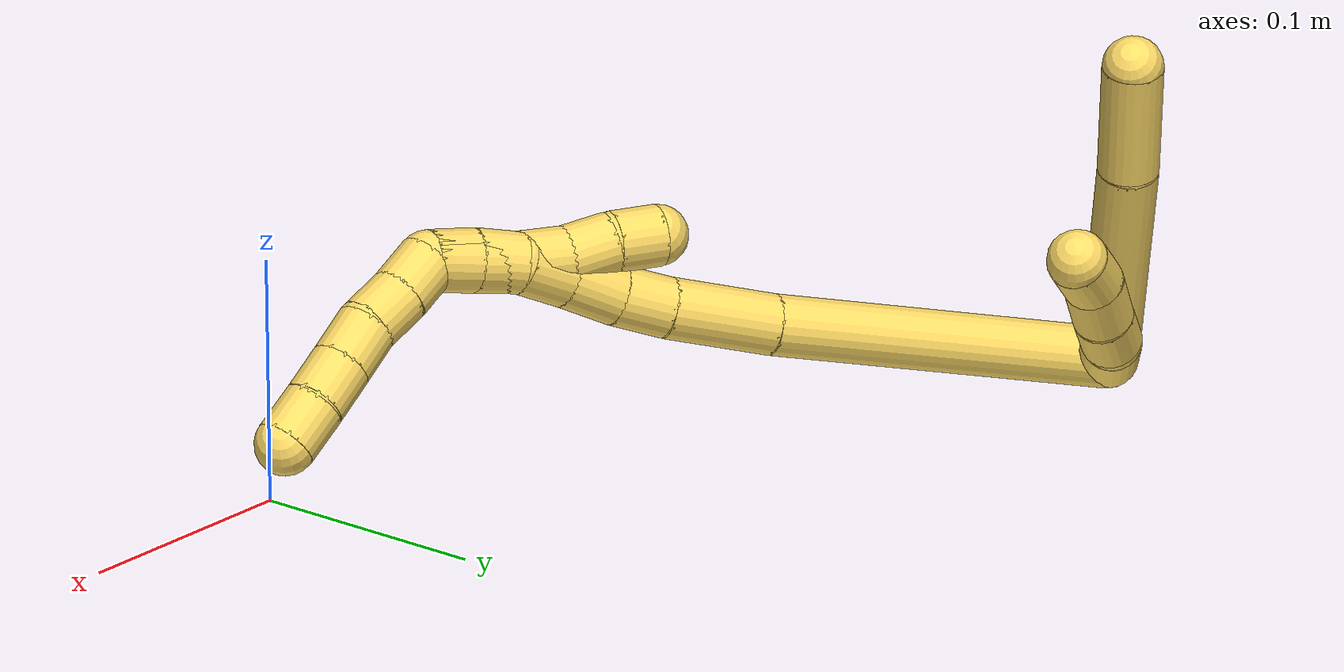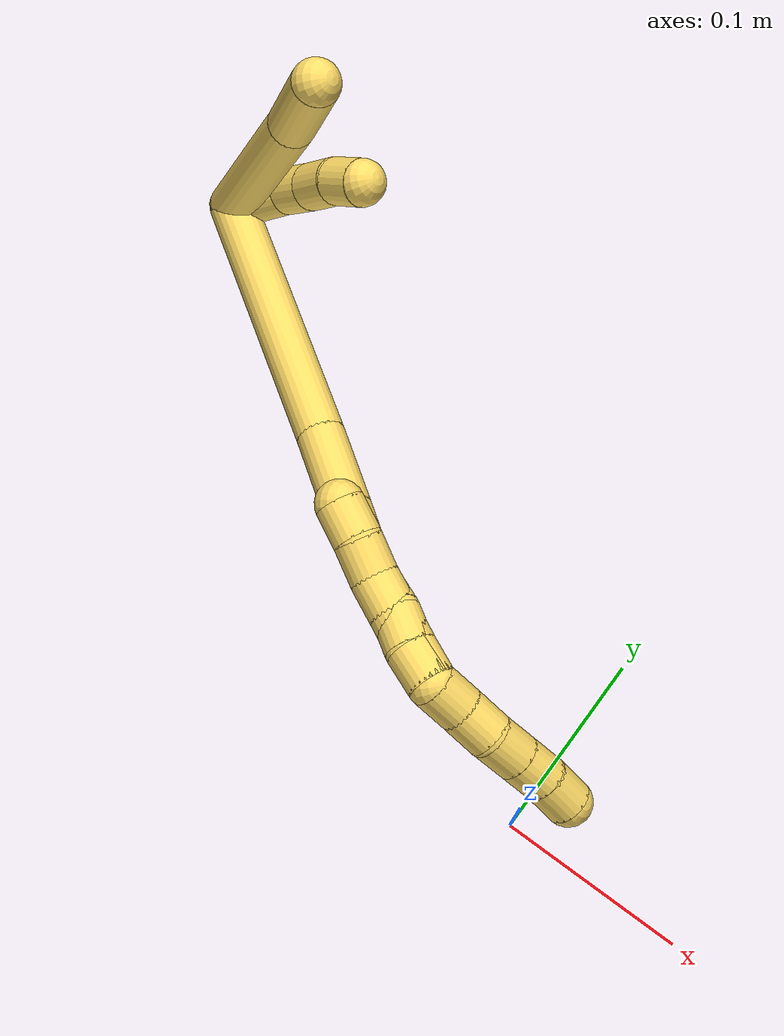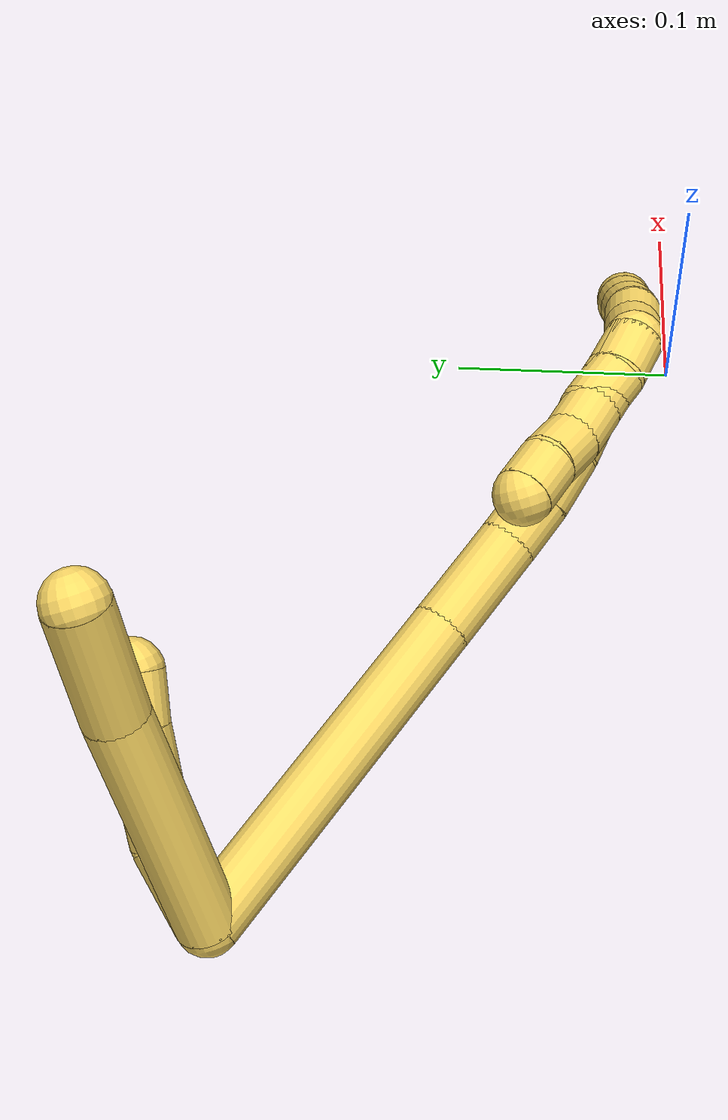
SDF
<sdf version="1.7">
 <world name="default">
  <model name="5">
   <static>0</static>
   <link name="5">
    <collision name="collision-cylinder-e_1_2_8">
     <pose>-0.017733 -0.011436 0.045639 0.245519 -0.36044 -0.044951</pose>
     <geometry><cylinder><radius>0.0125</radius><length>0.100562</length></cylinder></geometry>
     <surface>
      <friction><ode><mu>1.16</mu><mu2>1.16</mu2><slip1>0</slip1><slip2>0</slip2></ode></friction>
      <contact><ode><kp>1e+06</kp><kd>1</kd><max_vel>0</max_vel><min_depth>0.001</min_depth></ode></contact>
     </surface>
    </collision>
    <visual name="visual-cylinder-e_1_2_8">
     <pose>-0.017733 -0.011436 0.045639 0.245519 -0.36044 -0.044951</pose>
     <geometry><cylinder><radius>0.0125</radius><length>0.100562</length></cylinder></geometry>
     <material><ambient>1 0.858824 0.4 1</ambient></material>
    </visual>
    <collision name="collision-cylinder-e_2_8_6">
     <pose>-0.044404 -0.030727 0.112945 0.347796 -0.369922 -0.065713</pose>
     <geometry><cylinder><radius>0.0125</radius><length>0.049438</length></cylinder></geometry>
     <surface>
      <friction><ode><mu>1.16</mu><mu2>1.16</mu2><slip1>0</slip1><slip2>0</slip2></ode></friction>
      <contact><ode><kp>1e+06</kp><kd>1</kd><max_vel>0</max_vel><min_depth>0.001</min_depth></ode></contact>
     </surface>
    </collision>
    <visual name="visual-cylinder-e_2_8_6">
     <pose>-0.044404 -0.030727 0.112945 0.347796 -0.369922 -0.065713</pose>
     <geometry><cylinder><radius>0.0125</radius><length>0.049438</length></cylinder></geometry>
     <material><ambient>1 0.858824 0.4 1</ambient></material>
    </visual>
    <collision name="collision-cylinder-e_1_2_9">
     <pose>0.000744 0.004586 0.016445 -0.271958 0.043525 -0.005956</pose>
     <geometry><cylinder><radius>0.0125</radius><length>0.034177</length></cylinder></geometry>
     <surface>
      <friction><ode><mu>1.16</mu><mu2>1.16</mu2><slip1>0</slip1><slip2>0</slip2></ode></friction>
      <contact><ode><kp>1e+06</kp><kd>1</kd><max_vel>0</max_vel><min_depth>0.001</min_depth></ode></contact>
     </surface>
    </collision>
    <visual name="visual-cylinder-e_1_2_9">
     <pose>0.000744 0.004586 0.016445 -0.271958 0.043525 -0.005956</pose>
     <geometry><cylinder><radius>0.0125</radius><length>0.034177</length></cylinder></geometry>
     <material><ambient>1 0.858824 0.4 1</ambient></material>
    </visual>
    <collision name="collision-cylinder-e_2_9_10">
     <pose>0.001987 0.008365 0.043624 0.074973 0.046421 0.001741</pose>
     <geometry><cylinder><radius>0.0125</radius><length>0.021553</length></cylinder></geometry>
     <surface>
      <friction><ode><mu>1.16</mu><mu2>1.16</mu2><slip1>0</slip1><slip2>0</slip2></ode></friction>
      <contact><ode><kp>1e+06</kp><kd>1</kd><max_vel>0</max_vel><min_depth>0.001</min_depth></ode></contact>
     </surface>
    </collision>
    <visual name="visual-cylinder-e_2_9_10">
     <pose>0.001987 0.008365 0.043624 0.074973 0.046421 0.001741</pose>
     <geometry><cylinder><radius>0.0125</radius><length>0.021553</length></cylinder></geometry>
     <material><ambient>1 0.858824 0.4 1</ambient></material>
    </visual>
    <collision name="collision-cylinder-e_3_10_11">
     <pose>0.002264 0.005591 0.065992 0.1676 -0.018883 -0.001586</pose>
     <geometry><cylinder><radius>0.0125</radius><length>0.023601</length></cylinder></geometry>
     <surface>
      <friction><ode><mu>1.16</mu><mu2>1.16</mu2><slip1>0</slip1><slip2>0</slip2></ode></friction>
      <contact><ode><kp>1e+06</kp><kd>1</kd><max_vel>0</max_vel><min_depth>0.001</min_depth></ode></contact>
     </surface>
    </collision>
    <visual name="visual-cylinder-e_3_10_11">
     <pose>0.002264 0.005591 0.065992 0.1676 -0.018883 -0.001586</pose>
     <geometry><cylinder><radius>0.0125</radius><length>0.023601</length></cylinder></geometry>
     <material><ambient>1 0.858824 0.4 1</ambient></material>
    </visual>
    <collision name="collision-cylinder-e_4_11_5">
     <pose>0.003816 0.002196 0.087706 0.140593 0.17252 0.012178</pose>
     <geometry><cylinder><radius>0.0125</radius><length>0.020669</length></cylinder></geometry>
     <surface>
      <friction><ode><mu>1.16</mu><mu2>1.16</mu2><slip1>0</slip1><slip2>0</slip2></ode></friction>
      <contact><ode><kp>1e+06</kp><kd>1</kd><max_vel>0</max_vel><min_depth>0.001</min_depth></ode></contact>
     </surface>
    </collision>
    <visual name="visual-cylinder-e_4_11_5">
     <pose>0.003816 0.002196 0.087706 0.140593 0.17252 0.012178</pose>
     <geometry><cylinder><radius>0.0125</radius><length>0.020669</length></cylinder></geometry>
     <material><ambient>1 0.858824 0.4 1</ambient></material>
    </visual>
    <collision name="collision-cylinder-e_1_2_12">
     <pose>0.056296 -0.032355 0.034133 0.758662 0.874826 0.368594</pose>
     <geometry><cylinder><radius>0.0125</radius><length>0.146713</length></cylinder></geometry>
     <surface>
      <friction><ode><mu>1.16</mu><mu2>1.16</mu2><slip1>0</slip1><slip2>0</slip2></ode></friction>
      <contact><ode><kp>1e+06</kp><kd>1</kd><max_vel>0</max_vel><min_depth>0.001</min_depth></ode></contact>
     </surface>
    </collision>
    <visual name="visual-cylinder-e_1_2_12">
     <pose>0.056296 -0.032355 0.034133 0.758662 0.874826 0.368594</pose>
     <geometry><cylinder><radius>0.0125</radius><length>0.146713</length></cylinder></geometry>
     <material><ambient>1 0.858824 0.4 1</ambient></material>
    </visual>
    <collision name="collision-cylinder-e_2_12_13">
     <pose>0.129207 -0.075612 0.07929 0.77985 0.819977 0.353499</pose>
     <geometry><cylinder><radius>0.0125</radius><length>0.045449</length></cylinder></geometry>
     <surface>
      <friction><ode><mu>1.16</mu><mu2>1.16</mu2><slip1>0</slip1><slip2>0</slip2></ode></friction>
      <contact><ode><kp>1e+06</kp><kd>1</kd><max_vel>0</max_vel><min_depth>0.001</min_depth></ode></contact>
     </surface>
    </collision>
    <visual name="visual-cylinder-e_2_12_13">
     <pose>0.129207 -0.075612 0.07929 0.77985 0.819977 0.353499</pose>
     <geometry><cylinder><radius>0.0125</radius><length>0.045449</length></cylinder></geometry>
     <material><ambient>1 0.858824 0.4 1</ambient></material>
    </visual>
    <collision name="collision-cylinder-e_3_13_14">
     <pose>0.153309 -0.092322 0.096124 0.785168 0.739058 0.318054</pose>
     <geometry><cylinder><radius>0.0125</radius><length>0.022234</length></cylinder></geometry>
     <surface>
      <friction><ode><mu>1.16</mu><mu2>1.16</mu2><slip1>0</slip1><slip2>0</slip2></ode></friction>
      <contact><ode><kp>1e+06</kp><kd>1</kd><max_vel>0</max_vel><min_depth>0.001</min_depth></ode></contact>
     </surface>
    </collision>
    <visual name="visual-cylinder-e_3_13_14">
     <pose>0.153309 -0.092322 0.096124 0.785168 0.739058 0.318054</pose>
     <geometry><cylinder><radius>0.0125</radius><length>0.022234</length></cylinder></geometry>
     <material><ambient>1 0.858824 0.4 1</ambient></material>
    </visual>
    <collision name="collision-cylinder-e_4_14_15">
     <pose>0.167843 -0.104181 0.109283 0.68887 0.637216 0.235559</pose>
     <geometry><cylinder><radius>0.0125</radius><length>0.023683</length></cylinder></geometry>
     <surface>
      <friction><ode><mu>1.16</mu><mu2>1.16</mu2><slip1>0</slip1><slip2>0</slip2></ode></friction>
      <contact><ode><kp>1e+06</kp><kd>1</kd><max_vel>0</max_vel><min_depth>0.001</min_depth></ode></contact>
     </surface>
    </collision>
    <visual name="visual-cylinder-e_4_14_15">
     <pose>0.167843 -0.104181 0.109283 0.68887 0.637216 0.235559</pose>
     <geometry><cylinder><radius>0.0125</radius><length>0.023683</length></cylinder></geometry>
     <material><ambient>1 0.858824 0.4 1</ambient></material>
    </visual>
    <collision name="collision-cylinder-e_5_15_16">
     <pose>0.181411 -0.114608 0.123925 0.540465 0.654088 0.187386</pose>
     <geometry><cylinder><radius>0.0125</radius><length>0.02144</length></cylinder></geometry>
     <surface>
      <friction><ode><mu>1.16</mu><mu2>1.16</mu2><slip1>0</slip1><slip2>0</slip2></ode></friction>
      <contact><ode><kp>1e+06</kp><kd>1</kd><max_vel>0</max_vel><min_depth>0.001</min_depth></ode></contact>
     </surface>
    </collision>
    <visual name="visual-cylinder-e_5_15_16">
     <pose>0.181411 -0.114608 0.123925 0.540465 0.654088 0.187386</pose>
     <geometry><cylinder><radius>0.0125</radius><length>0.02144</length></cylinder></geometry>
     <material><ambient>1 0.858824 0.4 1</ambient></material>
    </visual>
    <collision name="collision-cylinder-e_6_16_17">
     <pose>0.195678 -0.123289 0.135882 0.745393 0.884526 0.366139</pose>
     <geometry><cylinder><radius>0.0125</radius><length>0.020024</length></cylinder></geometry>
     <surface>
      <friction><ode><mu>1.16</mu><mu2>1.16</mu2><slip1>0</slip1><slip2>0</slip2></ode></friction>
      <contact><ode><kp>1e+06</kp><kd>1</kd><max_vel>0</max_vel><min_depth>0.001</min_depth></ode></contact>
     </surface>
    </collision>
    <visual name="visual-cylinder-e_6_16_17">
     <pose>0.195678 -0.123289 0.135882 0.745393 0.884526 0.366139</pose>
     <geometry><cylinder><radius>0.0125</radius><length>0.020024</length></cylinder></geometry>
     <material><ambient>1 0.858824 0.4 1</ambient></material>
    </visual>
    <collision name="collision-cylinder-e_7_17_1">
     <pose>0.211698 -0.130091 0.146013 0.428598 0.942315 0.22084</pose>
     <geometry><cylinder><radius>0.0125</radius><length>0.020457</length></cylinder></geometry>
     <surface>
      <friction><ode><mu>1.16</mu><mu2>1.16</mu2><slip1>0</slip1><slip2>0</slip2></ode></friction>
      <contact><ode><kp>1e+06</kp><kd>1</kd><max_vel>0</max_vel><min_depth>0.001</min_depth></ode></contact>
     </surface>
    </collision>
    <visual name="visual-cylinder-e_7_17_1">
     <pose>0.211698 -0.130091 0.146013 0.428598 0.942315 0.22084</pose>
     <geometry><cylinder><radius>0.0125</radius><length>0.020457</length></cylinder></geometry>
     <material><ambient>1 0.858824 0.4 1</ambient></material>
    </visual>
    <collision name="collision-cylinder-e_1_1_18">
     <pose>0.229099 -0.128873 0.153182 -1.142 1.14981 -0.788794</pose>
     <geometry><cylinder><radius>0.0125</radius><length>0.02</length></cylinder></geometry>
     <surface>
      <friction><ode><mu>1.16</mu><mu2>1.16</mu2><slip1>0</slip1><slip2>0</slip2></ode></friction>
      <contact><ode><kp>1e+06</kp><kd>1</kd><max_vel>0</max_vel><min_depth>0.001</min_depth></ode></contact>
     </surface>
    </collision>
    <visual name="visual-cylinder-e_1_1_18">
     <pose>0.229099 -0.128873 0.153182 -1.142 1.14981 -0.788794</pose>
     <geometry><cylinder><radius>0.0125</radius><length>0.02</length></cylinder></geometry>
     <material><ambient>1 0.858824 0.4 1</ambient></material>
    </visual>
    <collision name="collision-cylinder-e_2_18_19">
     <pose>0.2474 -0.122154 0.157492 -0.8551 1.1616 -0.581178</pose>
     <geometry><cylinder><radius>0.0125</radius><length>0.02</length></cylinder></geometry>
     <surface>
      <friction><ode><mu>1.16</mu><mu2>1.16</mu2><slip1>0</slip1><slip2>0</slip2></ode></friction>
      <contact><ode><kp>1e+06</kp><kd>1</kd><max_vel>0</max_vel><min_depth>0.001</min_depth></ode></contact>
     </surface>
    </collision>
    <visual name="visual-cylinder-e_2_18_19">
     <pose>0.2474 -0.122154 0.157492 -0.8551 1.1616 -0.581178</pose>
     <geometry><cylinder><radius>0.0125</radius><length>0.02</length></cylinder></geometry>
     <material><ambient>1 0.858824 0.4 1</ambient></material>
    </visual>
    <collision name="collision-cylinder-e_3_19_20">
     <pose>0.265452 -0.114678 0.161192 -1.33194 1.09233 -0.891113</pose>
     <geometry><cylinder><radius>0.0125</radius><length>0.02</length></cylinder></geometry>
     <surface>
      <friction><ode><mu>1.16</mu><mu2>1.16</mu2><slip1>0</slip1><slip2>0</slip2></ode></friction>
      <contact><ode><kp>1e+06</kp><kd>1</kd><max_vel>0</max_vel><min_depth>0.001</min_depth></ode></contact>
     </surface>
    </collision>
    <visual name="visual-cylinder-e_3_19_20">
     <pose>0.265452 -0.114678 0.161192 -1.33194 1.09233 -0.891113</pose>
     <geometry><cylinder><radius>0.0125</radius><length>0.02</length></cylinder></geometry>
     <material><ambient>1 0.858824 0.4 1</ambient></material>
    </visual>
    <collision name="collision-cylinder-e_4_20_21">
     <pose>0.283226 -0.105803 0.163493 -1.30205 1.09674 -0.87112</pose>
     <geometry><cylinder><radius>0.0125</radius><length>0.02</length></cylinder></geometry>
     <surface>
      <friction><ode><mu>1.16</mu><mu2>1.16</mu2><slip1>0</slip1><slip2>0</slip2></ode></friction>
      <contact><ode><kp>1e+06</kp><kd>1</kd><max_vel>0</max_vel><min_depth>0.001</min_depth></ode></contact>
     </surface>
    </collision>
    <visual name="visual-cylinder-e_4_20_21">
     <pose>0.283226 -0.105803 0.163493 -1.30205 1.09674 -0.87112</pose>
     <geometry><cylinder><radius>0.0125</radius><length>0.02</length></cylinder></geometry>
     <material><ambient>1 0.858824 0.4 1</ambient></material>
    </visual>
    <collision name="collision-cylinder-e_5_21_4">
     <pose>0.301306 -0.097472 0.16519 -1.44804 1.16362 -1.05355</pose>
     <geometry><cylinder><radius>0.0125</radius><length>0.02</length></cylinder></geometry>
     <surface>
      <friction><ode><mu>1.16</mu><mu2>1.16</mu2><slip1>0</slip1><slip2>0</slip2></ode></friction>
      <contact><ode><kp>1e+06</kp><kd>1</kd><max_vel>0</max_vel><min_depth>0.001</min_depth></ode></contact>
     </surface>
    </collision>
    <visual name="visual-cylinder-e_5_21_4">
     <pose>0.301306 -0.097472 0.16519 -1.44804 1.16362 -1.05355</pose>
     <geometry><cylinder><radius>0.0125</radius><length>0.02</length></cylinder></geometry>
     <material><ambient>1 0.858824 0.4 1</ambient></material>
    </visual>
    <collision name="collision-cylinder-e_1_1_22">
     <pose>0.212092 -0.129528 0.146142 -2.62107 -0.90756 2.14204</pose>
     <geometry><cylinder><radius>0.0125</radius><length>0.02</length></cylinder></geometry>
     <surface>
      <friction><ode><mu>1.16</mu><mu2>1.16</mu2><slip1>0</slip1><slip2>0</slip2></ode></friction>
      <contact><ode><kp>1e+06</kp><kd>1</kd><max_vel>0</max_vel><min_depth>0.001</min_depth></ode></contact>
     </surface>
    </collision>
    <visual name="visual-cylinder-e_1_1_22">
     <pose>0.212092 -0.129528 0.146142 -2.62107 -0.90756 2.14204</pose>
     <geometry><cylinder><radius>0.0125</radius><length>0.02</length></cylinder></geometry>
     <material><ambient>1 0.858824 0.4 1</ambient></material>
    </visual>
    <collision name="collision-cylinder-e_2_22_23">
     <pose>0.19619 -0.12316 0.135829 -2.5547 -0.930963 2.05844</pose>
     <geometry><cylinder><radius>0.0125</radius><length>0.02</length></cylinder></geometry>
     <surface>
      <friction><ode><mu>1.16</mu><mu2>1.16</mu2><slip1>0</slip1><slip2>0</slip2></ode></friction>
      <contact><ode><kp>1e+06</kp><kd>1</kd><max_vel>0</max_vel><min_depth>0.001</min_depth></ode></contact>
     </surface>
    </collision>
    <visual name="visual-cylinder-e_2_22_23">
     <pose>0.19619 -0.12316 0.135829 -2.5547 -0.930963 2.05844</pose>
     <geometry><cylinder><radius>0.0125</radius><length>0.02</length></cylinder></geometry>
     <material><ambient>1 0.858824 0.4 1</ambient></material>
    </visual>
    <collision name="collision-cylinder-e_3_23_24">
     <pose>0.179519 -0.117381 0.126489 -2.62659 -1.04502 2.28381</pose>
     <geometry><cylinder><radius>0.0125</radius><length>0.02</length></cylinder></geometry>
     <surface>
      <friction><ode><mu>1.16</mu><mu2>1.16</mu2><slip1>0</slip1><slip2>0</slip2></ode></friction>
      <contact><ode><kp>1e+06</kp><kd>1</kd><max_vel>0</max_vel><min_depth>0.001</min_depth></ode></contact>
     </surface>
    </collision>
    <visual name="visual-cylinder-e_3_23_24">
     <pose>0.179519 -0.117381 0.126489 -2.62659 -1.04502 2.28381</pose>
     <geometry><cylinder><radius>0.0125</radius><length>0.02</length></cylinder></geometry>
     <material><ambient>1 0.858824 0.4 1</ambient></material>
    </visual>
    <collision name="collision-cylinder-e_4_24_25">
     <pose>0.161327 -0.113058 0.119775 -2.47353 -1.26727 2.25903</pose>
     <geometry><cylinder><radius>0.0125</radius><length>0.02</length></cylinder></geometry>
     <surface>
      <friction><ode><mu>1.16</mu><mu2>1.16</mu2><slip1>0</slip1><slip2>0</slip2></ode></friction>
      <contact><ode><kp>1e+06</kp><kd>1</kd><max_vel>0</max_vel><min_depth>0.001</min_depth></ode></contact>
     </surface>
    </collision>
    <visual name="visual-cylinder-e_4_24_25">
     <pose>0.161327 -0.113058 0.119775 -2.47353 -1.26727 2.25903</pose>
     <geometry><cylinder><radius>0.0125</radius><length>0.02</length></cylinder></geometry>
     <material><ambient>1 0.858824 0.4 1</ambient></material>
    </visual>
    <collision name="collision-cylinder-e_5_25_3">
     <pose>0.142919 -0.108703 0.113536 -2.5701 -1.08964 2.23878</pose>
     <geometry><cylinder><radius>0.0125</radius><length>0.02</length></cylinder></geometry>
     <surface>
      <friction><ode><mu>1.16</mu><mu2>1.16</mu2><slip1>0</slip1><slip2>0</slip2></ode></friction>
      <contact><ode><kp>1e+06</kp><kd>1</kd><max_vel>0</max_vel><min_depth>0.001</min_depth></ode></contact>
     </surface>
    </collision>
    <visual name="visual-cylinder-e_5_25_3">
     <pose>0.142919 -0.108703 0.113536 -2.5701 -1.08964 2.23878</pose>
     <geometry><cylinder><radius>0.0125</radius><length>0.02</length></cylinder></geometry>
     <material><ambient>1 0.858824 0.4 1</ambient></material>
    </visual>
    <collision name="collision-sphere-3">
     <pose>0.134055 -0.1062 0.109644 0 -0 0</pose>
     <geometry><sphere><radius>0.0125</radius></sphere></geometry>
     <surface>
      <friction><ode><mu>1.16</mu><mu2>1.16</mu2><slip1>0</slip1><slip2>0</slip2></ode></friction>
      <contact><ode><kp>1e+06</kp><kd>1</kd><max_vel>0</max_vel><min_depth>0.001</min_depth></ode></contact>
     </surface>
    </collision>
    <visual name="visual-sphere-3">
     <pose>0.134055 -0.1062 0.109644 0 -0 0</pose>
     <geometry><sphere><radius>0.0125</radius></sphere></geometry>
     <material><ambient>1 0.858824 0.4 1</ambient></material>
    </visual>
    <collision name="collision-sphere-25">
     <pose>0.151784 -0.111206 0.117429 0 -0 0</pose>
     <geometry><sphere><radius>0.0125</radius></sphere></geometry>
     <surface>
      <friction><ode><mu>1.16</mu><mu2>1.16</mu2><slip1>0</slip1><slip2>0</slip2></ode></friction>
      <contact><ode><kp>1e+06</kp><kd>1</kd><max_vel>0</max_vel><min_depth>0.001</min_depth></ode></contact>
     </surface>
    </collision>
    <visual name="visual-sphere-25">
     <pose>0.151784 -0.111206 0.117429 0 -0 0</pose>
     <geometry><sphere><radius>0.0125</radius></sphere></geometry>
     <material><ambient>1 0.858824 0.4 1</ambient></material>
    </visual>
    <collision name="collision-sphere-24">
     <pose>0.17087 -0.114909 0.122122 0 -0 0</pose>
     <geometry><sphere><radius>0.0125</radius></sphere></geometry>
     <surface>
      <friction><ode><mu>1.16</mu><mu2>1.16</mu2><slip1>0</slip1><slip2>0</slip2></ode></friction>
      <contact><ode><kp>1e+06</kp><kd>1</kd><max_vel>0</max_vel><min_depth>0.001</min_depth></ode></contact>
     </surface>
    </collision>
    <visual name="visual-sphere-24">
     <pose>0.17087 -0.114909 0.122122 0 -0 0</pose>
     <geometry><sphere><radius>0.0125</radius></sphere></geometry>
     <material><ambient>1 0.858824 0.4 1</ambient></material>
    </visual>
    <collision name="collision-sphere-23">
     <pose>0.188168 -0.119853 0.130857 0 -0 0</pose>
     <geometry><sphere><radius>0.0125</radius></sphere></geometry>
     <surface>
      <friction><ode><mu>1.16</mu><mu2>1.16</mu2><slip1>0</slip1><slip2>0</slip2></ode></friction>
      <contact><ode><kp>1e+06</kp><kd>1</kd><max_vel>0</max_vel><min_depth>0.001</min_depth></ode></contact>
     </surface>
    </collision>
    <visual name="visual-sphere-23">
     <pose>0.188168 -0.119853 0.130857 0 -0 0</pose>
     <geometry><sphere><radius>0.0125</radius></sphere></geometry>
     <material><ambient>1 0.858824 0.4 1</ambient></material>
    </visual>
    <collision name="collision-sphere-22">
     <pose>0.204212 -0.126466 0.1408 0 -0 0</pose>
     <geometry><sphere><radius>0.0125</radius></sphere></geometry>
     <surface>
      <friction><ode><mu>1.16</mu><mu2>1.16</mu2><slip1>0</slip1><slip2>0</slip2></ode></friction>
      <contact><ode><kp>1e+06</kp><kd>1</kd><max_vel>0</max_vel><min_depth>0.001</min_depth></ode></contact>
     </surface>
    </collision>
    <visual name="visual-sphere-22">
     <pose>0.204212 -0.126466 0.1408 0 -0 0</pose>
     <geometry><sphere><radius>0.0125</radius></sphere></geometry>
     <material><ambient>1 0.858824 0.4 1</ambient></material>
    </visual>
    <collision name="collision-sphere-4">
     <pose>0.310488 -0.093542 0.165675 0 -0 0</pose>
     <geometry><sphere><radius>0.0125</radius></sphere></geometry>
     <surface>
      <friction><ode><mu>1.16</mu><mu2>1.16</mu2><slip1>0</slip1><slip2>0</slip2></ode></friction>
      <contact><ode><kp>1e+06</kp><kd>1</kd><max_vel>0</max_vel><min_depth>0.001</min_depth></ode></contact>
     </surface>
    </collision>
    <visual name="visual-sphere-4">
     <pose>0.310488 -0.093542 0.165675 0 -0 0</pose>
     <geometry><sphere><radius>0.0125</radius></sphere></geometry>
     <material><ambient>1 0.858824 0.4 1</ambient></material>
    </visual>
    <collision name="collision-sphere-21">
     <pose>0.292123 -0.101402 0.164705 0 -0 0</pose>
     <geometry><sphere><radius>0.0125</radius></sphere></geometry>
     <surface>
      <friction><ode><mu>1.16</mu><mu2>1.16</mu2><slip1>0</slip1><slip2>0</slip2></ode></friction>
      <contact><ode><kp>1e+06</kp><kd>1</kd><max_vel>0</max_vel><min_depth>0.001</min_depth></ode></contact>
     </surface>
    </collision>
    <visual name="visual-sphere-21">
     <pose>0.292123 -0.101402 0.164705 0 -0 0</pose>
     <geometry><sphere><radius>0.0125</radius></sphere></geometry>
     <material><ambient>1 0.858824 0.4 1</ambient></material>
    </visual>
    <collision name="collision-sphere-20">
     <pose>0.274329 -0.110205 0.162281 0 -0 0</pose>
     <geometry><sphere><radius>0.0125</radius></sphere></geometry>
     <surface>
      <friction><ode><mu>1.16</mu><mu2>1.16</mu2><slip1>0</slip1><slip2>0</slip2></ode></friction>
      <contact><ode><kp>1e+06</kp><kd>1</kd><max_vel>0</max_vel><min_depth>0.001</min_depth></ode></contact>
     </surface>
    </collision>
    <visual name="visual-sphere-20">
     <pose>0.274329 -0.110205 0.162281 0 -0 0</pose>
     <geometry><sphere><radius>0.0125</radius></sphere></geometry>
     <material><ambient>1 0.858824 0.4 1</ambient></material>
    </visual>
    <collision name="collision-sphere-11">
     <pose>0.002042 0.003623 0.077625 0 -0 0</pose>
     <geometry><sphere><radius>0.0125</radius></sphere></geometry>
     <surface>
      <friction><ode><mu>1.16</mu><mu2>1.16</mu2><slip1>0</slip1><slip2>0</slip2></ode></friction>
      <contact><ode><kp>1e+06</kp><kd>1</kd><max_vel>0</max_vel><min_depth>0.001</min_depth></ode></contact>
     </surface>
    </collision>
    <visual name="visual-sphere-11">
     <pose>0.002042 0.003623 0.077625 0 -0 0</pose>
     <geometry><sphere><radius>0.0125</radius></sphere></geometry>
     <material><ambient>1 0.858824 0.4 1</ambient></material>
    </visual>
    <collision name="collision-sphere-10">
     <pose>0.002487 0.007559 0.054359 0 -0 0</pose>
     <geometry><sphere><radius>0.0125</radius></sphere></geometry>
     <surface>
      <friction><ode><mu>1.16</mu><mu2>1.16</mu2><slip1>0</slip1><slip2>0</slip2></ode></friction>
      <contact><ode><kp>1e+06</kp><kd>1</kd><max_vel>0</max_vel><min_depth>0.001</min_depth></ode></contact>
     </surface>
    </collision>
    <visual name="visual-sphere-10">
     <pose>0.002487 0.007559 0.054359 0 -0 0</pose>
     <geometry><sphere><radius>0.0125</radius></sphere></geometry>
     <material><ambient>1 0.858824 0.4 1</ambient></material>
    </visual>
    <collision name="collision-sphere-6">
     <pose>-0.053341 -0.038582 0.134612 0 -0 0</pose>
     <geometry><sphere><radius>0.0125</radius></sphere></geometry>
     <surface>
      <friction><ode><mu>1.16</mu><mu2>1.16</mu2><slip1>0</slip1><slip2>0</slip2></ode></friction>
      <contact><ode><kp>1e+06</kp><kd>1</kd><max_vel>0</max_vel><min_depth>0.001</min_depth></ode></contact>
     </surface>
    </collision>
    <visual name="visual-sphere-6">
     <pose>-0.053341 -0.038582 0.134612 0 -0 0</pose>
     <geometry><sphere><radius>0.0125</radius></sphere></geometry>
     <material><ambient>1 0.858824 0.4 1</ambient></material>
    </visual>
    <collision name="collision-sphere-9">
     <pose>0.001487 0.009172 0.032889 0 -0 0</pose>
     <geometry><sphere><radius>0.0125</radius></sphere></geometry>
     <surface>
      <friction><ode><mu>1.16</mu><mu2>1.16</mu2><slip1>0</slip1><slip2>0</slip2></ode></friction>
      <contact><ode><kp>1e+06</kp><kd>1</kd><max_vel>0</max_vel><min_depth>0.001</min_depth></ode></contact>
     </surface>
    </collision>
    <visual name="visual-sphere-9">
     <pose>0.001487 0.009172 0.032889 0 -0 0</pose>
     <geometry><sphere><radius>0.0125</radius></sphere></geometry>
     <material><ambient>1 0.858824 0.4 1</ambient></material>
    </visual>
    <collision name="collision-sphere-2">
     <geometry><sphere><radius>0.0125</radius></sphere></geometry>
     <surface>
      <friction><ode><mu>1.16</mu><mu2>1.16</mu2><slip1>0</slip1><slip2>0</slip2></ode></friction>
      <contact><ode><kp>1e+06</kp><kd>1</kd><max_vel>0</max_vel><min_depth>0.001</min_depth></ode></contact>
     </surface>
    </collision>
    <visual name="visual-sphere-2">
     <geometry><sphere><radius>0.0125</radius></sphere></geometry>
     <material><ambient>1 0.858824 0.4 1</ambient></material>
    </visual>
    <collision name="collision-sphere-19">
     <pose>0.256575 -0.119152 0.160102 0 -0 0</pose>
     <geometry><sphere><radius>0.0125</radius></sphere></geometry>
     <surface>
      <friction><ode><mu>1.16</mu><mu2>1.16</mu2><slip1>0</slip1><slip2>0</slip2></ode></friction>
      <contact><ode><kp>1e+06</kp><kd>1</kd><max_vel>0</max_vel><min_depth>0.001</min_depth></ode></contact>
     </surface>
    </collision>
    <visual name="visual-sphere-19">
     <pose>0.256575 -0.119152 0.160102 0 -0 0</pose>
     <geometry><sphere><radius>0.0125</radius></sphere></geometry>
     <material><ambient>1 0.858824 0.4 1</ambient></material>
    </visual>
    <collision name="collision-sphere-8">
     <pose>-0.035467 -0.022872 0.091278 0 -0 0</pose>
     <geometry><sphere><radius>0.0125</radius></sphere></geometry>
     <surface>
      <friction><ode><mu>1.16</mu><mu2>1.16</mu2><slip1>0</slip1><slip2>0</slip2></ode></friction>
      <contact><ode><kp>1e+06</kp><kd>1</kd><max_vel>0</max_vel><min_depth>0.001</min_depth></ode></contact>
     </surface>
    </collision>
    <visual name="visual-sphere-8">
     <pose>-0.035467 -0.022872 0.091278 0 -0 0</pose>
     <geometry><sphere><radius>0.0125</radius></sphere></geometry>
     <material><ambient>1 0.858824 0.4 1</ambient></material>
    </visual>
    <collision name="collision-sphere-5">
     <pose>0.00559 0.000769 0.097786 0 -0 0</pose>
     <geometry><sphere><radius>0.0125</radius></sphere></geometry>
     <surface>
      <friction><ode><mu>1.16</mu><mu2>1.16</mu2><slip1>0</slip1><slip2>0</slip2></ode></friction>
      <contact><ode><kp>1e+06</kp><kd>1</kd><max_vel>0</max_vel><min_depth>0.001</min_depth></ode></contact>
     </surface>
    </collision>
    <visual name="visual-sphere-5">
     <pose>0.00559 0.000769 0.097786 0 -0 0</pose>
     <geometry><sphere><radius>0.0125</radius></sphere></geometry>
     <material><ambient>1 0.858824 0.4 1</ambient></material>
    </visual>
    <collision name="collision-sphere-12">
     <pose>0.112592 -0.06471 0.068266 0 -0 0</pose>
     <geometry><sphere><radius>0.0125</radius></sphere></geometry>
     <surface>
      <friction><ode><mu>1.16</mu><mu2>1.16</mu2><slip1>0</slip1><slip2>0</slip2></ode></friction>
      <contact><ode><kp>1e+06</kp><kd>1</kd><max_vel>0</max_vel><min_depth>0.001</min_depth></ode></contact>
     </surface>
    </collision>
    <visual name="visual-sphere-12">
     <pose>0.112592 -0.06471 0.068266 0 -0 0</pose>
     <geometry><sphere><radius>0.0125</radius></sphere></geometry>
     <material><ambient>1 0.858824 0.4 1</ambient></material>
    </visual>
    <collision name="collision-sphere-13">
     <pose>0.145821 -0.086513 0.090313 0 -0 0</pose>
     <geometry><sphere><radius>0.0125</radius></sphere></geometry>
     <surface>
      <friction><ode><mu>1.16</mu><mu2>1.16</mu2><slip1>0</slip1><slip2>0</slip2></ode></friction>
      <contact><ode><kp>1e+06</kp><kd>1</kd><max_vel>0</max_vel><min_depth>0.001</min_depth></ode></contact>
     </surface>
    </collision>
    <visual name="visual-sphere-13">
     <pose>0.145821 -0.086513 0.090313 0 -0 0</pose>
     <geometry><sphere><radius>0.0125</radius></sphere></geometry>
     <material><ambient>1 0.858824 0.4 1</ambient></material>
    </visual>
    <collision name="collision-sphere-14">
     <pose>0.160798 -0.098131 0.101935 0 -0 0</pose>
     <geometry><sphere><radius>0.0125</radius></sphere></geometry>
     <surface>
      <friction><ode><mu>1.16</mu><mu2>1.16</mu2><slip1>0</slip1><slip2>0</slip2></ode></friction>
      <contact><ode><kp>1e+06</kp><kd>1</kd><max_vel>0</max_vel><min_depth>0.001</min_depth></ode></contact>
     </surface>
    </collision>
    <visual name="visual-sphere-14">
     <pose>0.160798 -0.098131 0.101935 0 -0 0</pose>
     <geometry><sphere><radius>0.0125</radius></sphere></geometry>
     <material><ambient>1 0.858824 0.4 1</ambient></material>
    </visual>
    <collision name="collision-sphere-15">
     <pose>0.174888 -0.110231 0.11663 0 -0 0</pose>
     <geometry><sphere><radius>0.0125</radius></sphere></geometry>
     <surface>
      <friction><ode><mu>1.16</mu><mu2>1.16</mu2><slip1>0</slip1><slip2>0</slip2></ode></friction>
      <contact><ode><kp>1e+06</kp><kd>1</kd><max_vel>0</max_vel><min_depth>0.001</min_depth></ode></contact>
     </surface>
    </collision>
    <visual name="visual-sphere-15">
     <pose>0.174888 -0.110231 0.11663 0 -0 0</pose>
     <geometry><sphere><radius>0.0125</radius></sphere></geometry>
     <material><ambient>1 0.858824 0.4 1</ambient></material>
    </visual>
    <collision name="collision-sphere-16">
     <pose>0.187933 -0.118986 0.13122 0 -0 0</pose>
     <geometry><sphere><radius>0.0125</radius></sphere></geometry>
     <surface>
      <friction><ode><mu>1.16</mu><mu2>1.16</mu2><slip1>0</slip1><slip2>0</slip2></ode></friction>
      <contact><ode><kp>1e+06</kp><kd>1</kd><max_vel>0</max_vel><min_depth>0.001</min_depth></ode></contact>
     </surface>
    </collision>
    <visual name="visual-sphere-16">
     <pose>0.187933 -0.118986 0.13122 0 -0 0</pose>
     <geometry><sphere><radius>0.0125</radius></sphere></geometry>
     <material><ambient>1 0.858824 0.4 1</ambient></material>
    </visual>
    <collision name="collision-sphere-17">
     <pose>0.203424 -0.127591 0.140543 0 -0 0</pose>
     <geometry><sphere><radius>0.0125</radius></sphere></geometry>
     <surface>
      <friction><ode><mu>1.16</mu><mu2>1.16</mu2><slip1>0</slip1><slip2>0</slip2></ode></friction>
      <contact><ode><kp>1e+06</kp><kd>1</kd><max_vel>0</max_vel><min_depth>0.001</min_depth></ode></contact>
     </surface>
    </collision>
    <visual name="visual-sphere-17">
     <pose>0.203424 -0.127591 0.140543 0 -0 0</pose>
     <geometry><sphere><radius>0.0125</radius></sphere></geometry>
     <material><ambient>1 0.858824 0.4 1</ambient></material>
    </visual>
    <collision name="collision-sphere-1">
     <pose>0.219972 -0.13259 0.151483 0 -0 0</pose>
     <geometry><sphere><radius>0.0125</radius></sphere></geometry>
     <surface>
      <friction><ode><mu>1.16</mu><mu2>1.16</mu2><slip1>0</slip1><slip2>0</slip2></ode></friction>
      <contact><ode><kp>1e+06</kp><kd>1</kd><max_vel>0</max_vel><min_depth>0.001</min_depth></ode></contact>
     </surface>
    </collision>
    <visual name="visual-sphere-1">
     <pose>0.219972 -0.13259 0.151483 0 -0 0</pose>
     <geometry><sphere><radius>0.0125</radius></sphere></geometry>
     <material><ambient>1 0.858824 0.4 1</ambient></material>
    </visual>
    <collision name="collision-sphere-18">
     <pose>0.238226 -0.125157 0.154881 0 -0 0</pose>
     <geometry><sphere><radius>0.0125</radius></sphere></geometry>
     <surface>
      <friction><ode><mu>1.16</mu><mu2>1.16</mu2><slip1>0</slip1><slip2>0</slip2></ode></friction>
      <contact><ode><kp>1e+06</kp><kd>1</kd><max_vel>0</max_vel><min_depth>0.001</min_depth></ode></contact>
     </surface>
    </collision>
    <visual name="visual-sphere-18">
     <pose>0.238226 -0.125157 0.154881 0 -0 0</pose>
     <geometry><sphere><radius>0.0125</radius></sphere></geometry>
     <material><ambient>1 0.858824 0.4 1</ambient></material>
    </visual>
    <inertial>
     <pose>0.098995 -0.060882 0.087459 0 -0 0</pose>
     <mass>0.75</mass>
     <inertia>
      <ixx>0.000353</ixx>
      <ixy>0</ixy>
      <ixz>0</ixz>
      <iyy>0.000422</iyy>
      <iyz>0</iyz>
      <izz>-1.1e-05</izz>
     </inertia>
    </inertial>
   </link>
   <pose>-0.311441 0.179694 0.012503 -0.632053 0.48732 -0.507272</pose>
  </model>
 </world>
</sdf>
